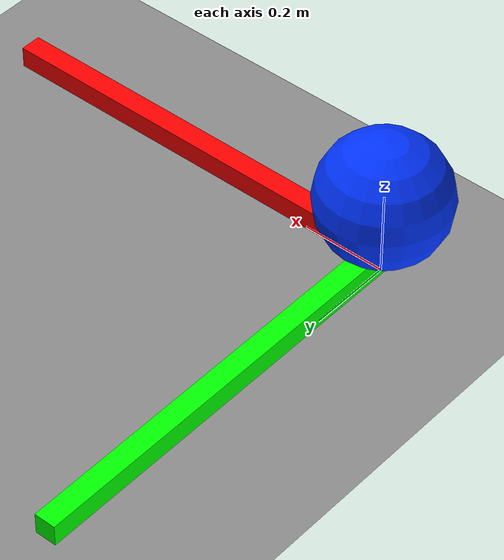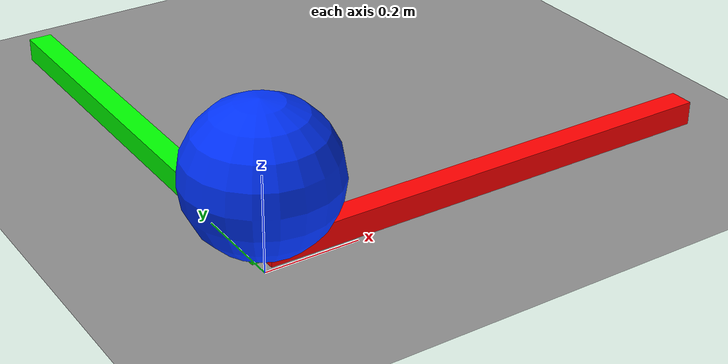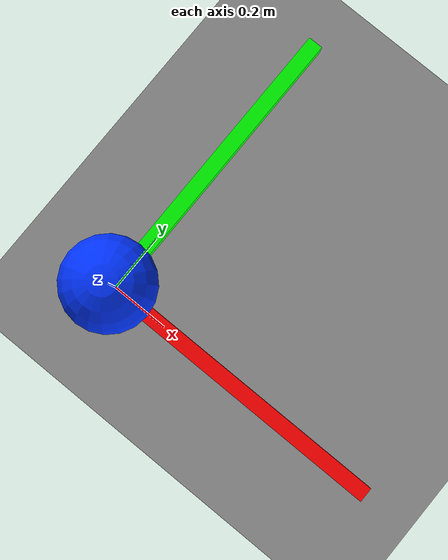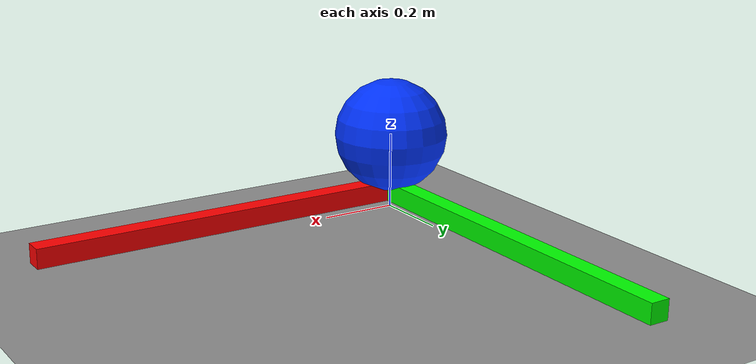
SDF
<?xml version="1.0"?>
<sdf version="1.9">
  <world name="robocup2026_debug">
    <physics name="1ms" type="ode">
      <max_step_size>0.001</max_step_size>
      <real_time_factor>1.0</real_time_factor>
      <real_time_update_rate>1000</real_time_update_rate>
    </physics>

    <plugin filename="ignition-gazebo-physics-system" name="ignition::gazebo::systems::Physics" />
    <plugin filename="ignition-gazebo-user-commands-system" name="ignition::gazebo::systems::UserCommands" />
    <plugin filename="ignition-gazebo-scene-broadcaster-system" name="ignition::gazebo::systems::SceneBroadcaster" />
    <plugin filename="ignition-gazebo-sensors-system" name="ignition::gazebo::systems::Sensors">
      <render_engine>ogre2</render_engine>
    </plugin>

    <gui fullscreen="0">
      <camera name="user_camera">
        <pose>0 -18 14 0 0.75 1.5708</pose>
        <view_controller>orbit</view_controller>
        <projection_type>perspective</projection_type>
      </camera>
    </gui>

    <light type="directional" name="sun">
      <cast_shadows>true</cast_shadows>
      <pose>0 0 20 0 0 0</pose>
      <diffuse>0.9 0.9 0.9 1</diffuse>
      <specular>0.3 0.3 0.3 1</specular>
      <direction>-0.5 0.2 -0.9</direction>
    </light>

    <light type="point" name="ambient_fill">
      <pose>0 0 10 0 0 0</pose>
      <diffuse>0.5 0.5 0.5 1</diffuse>
      <specular>0.1 0.1 0.1 1</specular>
      <attenuation>
        <range>40</range>
        <constant>0.8</constant>
        <linear>0.01</linear>
        <quadratic>0.001</quadratic>
      </attenuation>
      <cast_shadows>false</cast_shadows>
    </light>

    <model name="ground_plane">
      <static>true</static>
      <link name="link">
        <collision name="collision">
          <geometry>
            <plane>
              <normal>0 0 1</normal>
              <size>30 30</size>
            </plane>
          </geometry>
        </collision>
        <visual name="visual">
          <geometry>
            <plane>
              <normal>0 0 1</normal>
              <size>30 30</size>
            </plane>
          </geometry>
          <material>
            <ambient>0.42 0.42 0.42 1</ambient>
            <diffuse>0.55 0.55 0.55 1</diffuse>
          </material>
        </visual>
      </link>
    </model>

    <!-- Diagnostic origin marker: if this is visible but the arena is not,
         the DAE import/scale is the issue. If this is also invisible, the
         issue is camera or graphics rendering. -->
    <model name="origin_marker">
      <static>true</static>
      <pose>0 0 0.05 0 0 0</pose>
      <link name="link">
        <visual name="red_x_axis">
          <pose>0.5 0 0 0 0 0</pose>
          <geometry><box><size>1.0 0.05 0.05</size></box></geometry>
          <material><ambient>1 0 0 1</ambient><diffuse>1 0 0 1</diffuse></material>
        </visual>
        <visual name="green_y_axis">
          <pose>0 0.5 0 0 0 0</pose>
          <geometry><box><size>0.05 1.0 0.05</size></box></geometry>
          <material><ambient>0 1 0 1</ambient><diffuse>0 1 0 1</diffuse></material>
        </visual>
        <visual name="blue_center">
          <pose>0 0 0.15 0 0 0</pose>
          <geometry><sphere><radius>0.15</radius></sphere></geometry>
          <material><ambient>0 0.2 1 1</ambient><diffuse>0 0.2 1 1</diffuse></material>
        </visual>
      </link>
    </model>

  </world>
</sdf>
